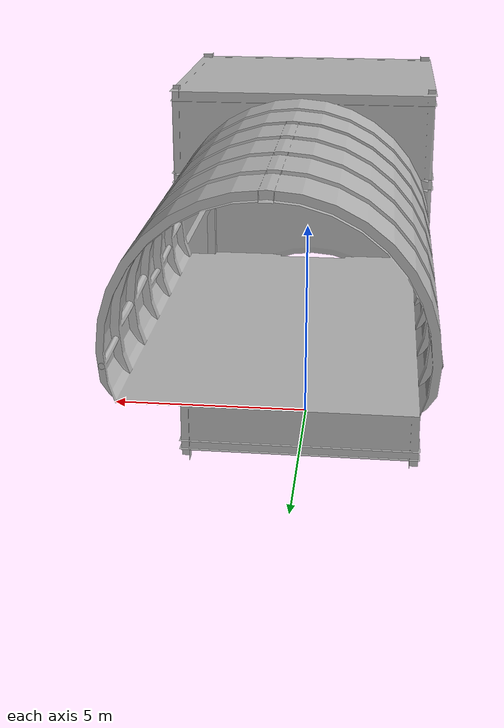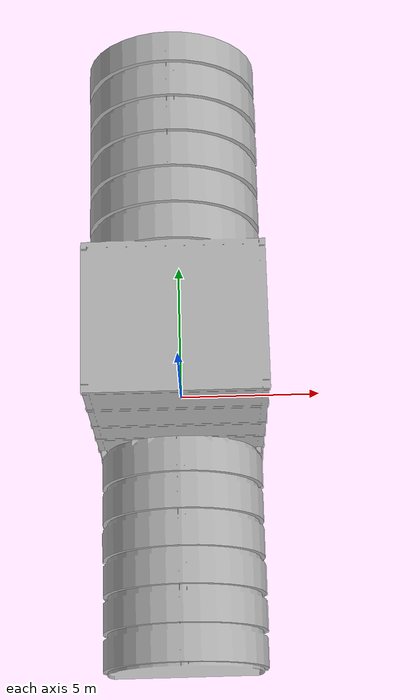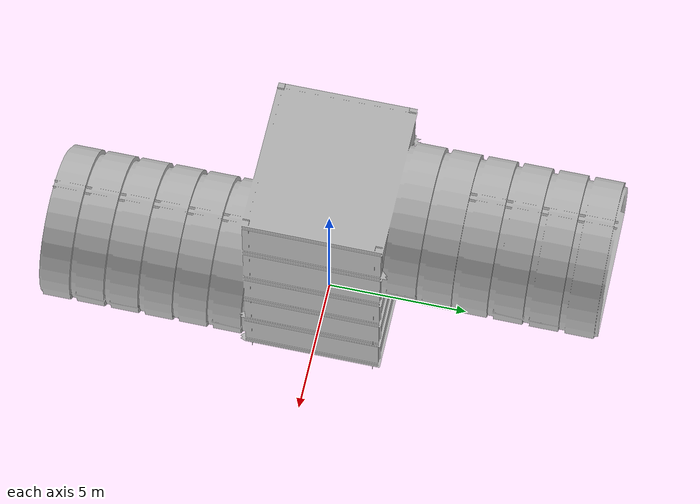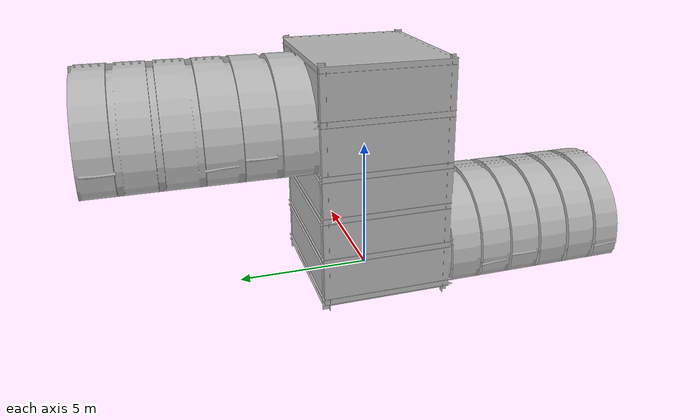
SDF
<?xml version="1.0" ?>
<sdf version="1.6">
  <model name="tunnel_tile_7">
    <static>true</static>
    <link name="link">
      <collision name="collision">
        <geometry>
          <mesh>
            <uri>model://tunnel_tile_7/meshes/tunnel_tile_7.dae</uri>
          </mesh>
        </geometry>
      </collision>

      <visual name="visual">
        <geometry>
          <mesh>
            <uri>model://tunnel_tile_7/meshes/tunnel_tile_7.dae</uri>
          </mesh>
        </geometry>
      </visual>
    </link>
  </model>
</sdf>
